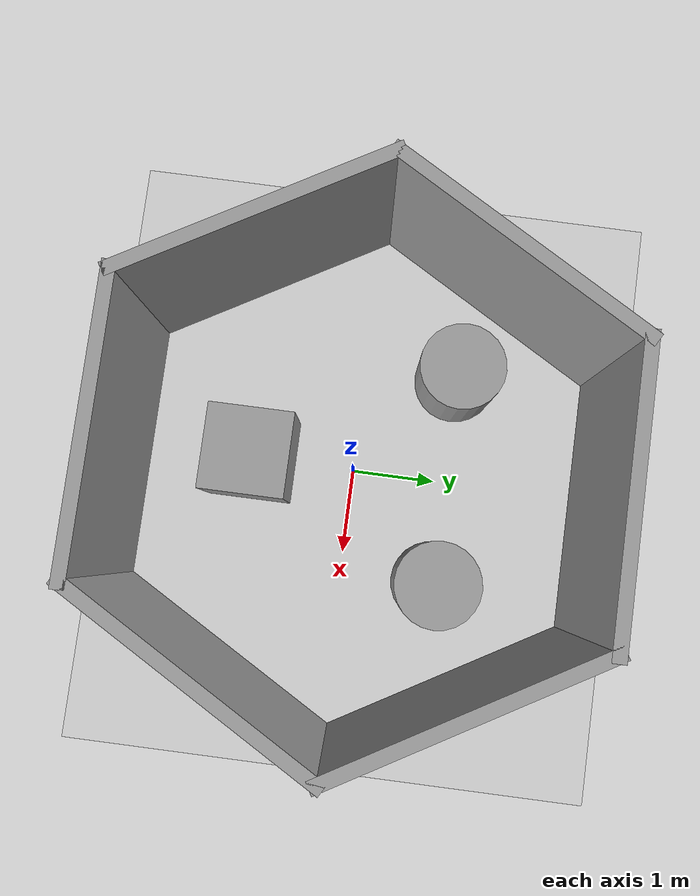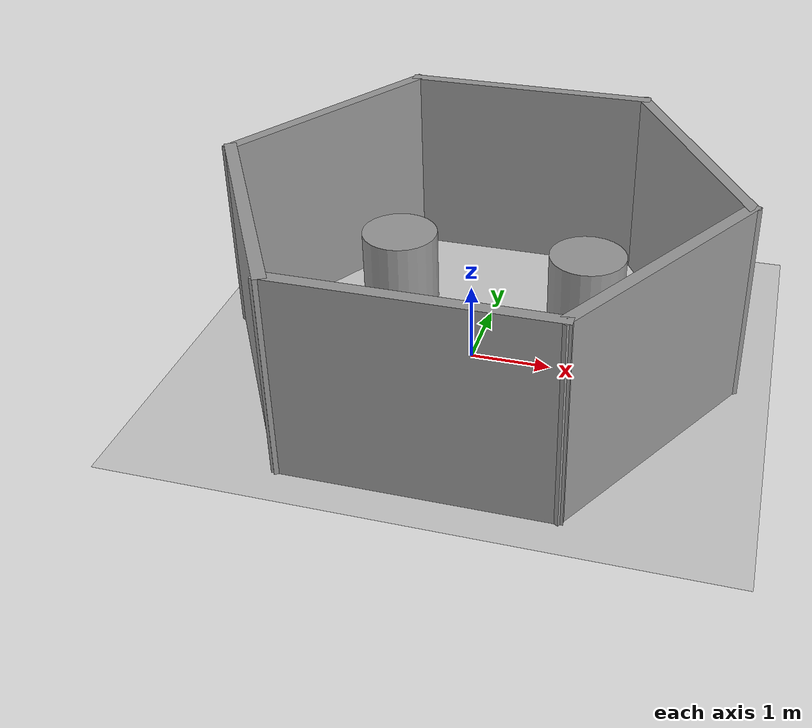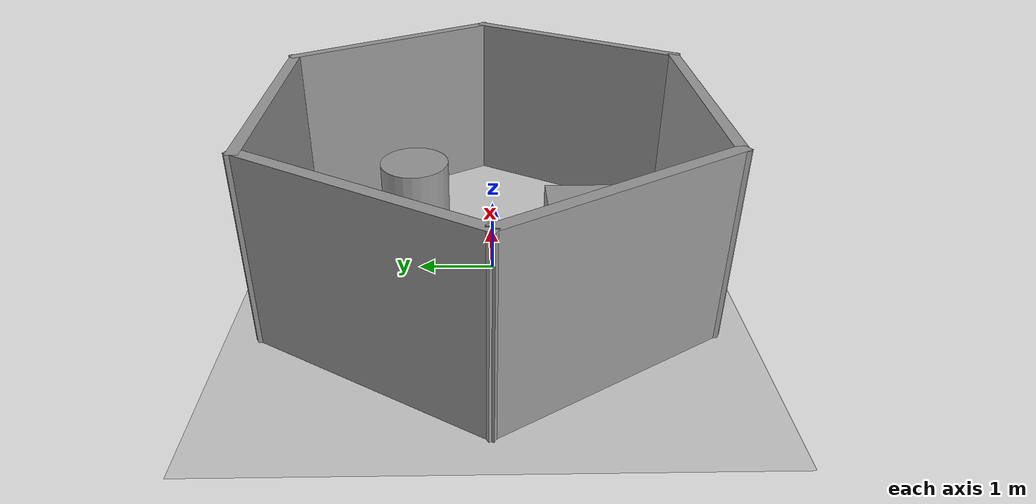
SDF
<sdf version="1.7">
 <world name="default">
  <light name="sun" type="directional">
   <pose>0 0 10 0 -0 0</pose>
   <diffuse>0.8 0.8 0.8 1</diffuse>
   <specular>0.2 0.2 0.2 1</specular>
   <attenuation>
    <range>1000</range>
    <constant>0.9</constant>
    <linear>0.01</linear>
    <quadratic>0.001</quadratic>
   </attenuation>
   <direction>-0.5 0.1 -0.9</direction>
   <spot><inner_angle>0</inner_angle><outer_angle>0</outer_angle><falloff>0</falloff></spot>
  </light>
  <model name="ground_plane">
   <static>1</static>
   <link name="link">
    <collision name="collision">
     <geometry><plane><normal>0 0 1</normal><size>100 100</size></plane></geometry>
     <surface>
      <contact><collide_bitmask>65535</collide_bitmask></contact>
      <friction><ode><mu>100</mu><mu2>50</mu2></ode></friction>
     </surface>
    </collision>
    <visual name="visual">
     <cast_shadows>0</cast_shadows>
     <geometry><plane><normal>0 0 1</normal><size>100 100</size></plane></geometry>
     <material>
      <script><uri>file://media/materials/scripts/gazebo.material</uri><name>Gazebo/Grey</name></script>
     </material>
    </visual>
   </link>
  </model>
  <gravity>0 0 -9.8</gravity>
  <magnetic_field>6e-06 2.3e-05 -4.2e-05</magnetic_field>
  <atmosphere type="adiabatic"/>
  <physics type="ode">
   <max_step_size>0.001</max_step_size>
   <real_time_factor>1</real_time_factor>
   <real_time_update_rate>1000</real_time_update_rate>
  </physics>
  <scene><ambient>0.4 0.4 0.4 1</ambient><background>0.7 0.7 0.7 1</background><shadows>1</shadows></scene>
  <audio><device>default</device></audio>
  <spherical_coordinates>
   <surface_model>EARTH_WGS84</surface_model>
   <latitude_deg>0</latitude_deg>
   <longitude_deg>0</longitude_deg>
   <elevation>0</elevation>
   <heading_deg>0</heading_deg>
  </spherical_coordinates>
  <model name="fish_world_0">
   <pose>0.07 0.08 0 0 -0 0</pose>
   <link name="Wall_10">
    <collision name="Wall_10_Collision">
     <geometry><box><size>3.25 0.15 2.5</size></box></geometry>
     <pose>0 0 1.25 0 -0 0</pose>
    </collision>
    <visual name="Wall_10_Visual">
     <pose>0 0 1.25 0 -0 0</pose>
     <geometry><box><size>3.25 0.15 2.5</size></box></geometry>
     <material>
      <script><uri>file://media/materials/scripts/gazebo.material</uri><name>Gazebo/Grey</name></script>
      <ambient>1 1 1 1</ambient>
     </material>
     <meta><layer>0</layer></meta>
    </visual>
    <pose>0 -2.68468 0 0 -0 0</pose>
   </link>
   <link name="Wall_11">
    <collision name="Wall_11_Collision">
     <geometry><box><size>3.25 0.15 2.5</size></box></geometry>
     <pose>0 0 1.25 0 -0 0</pose>
    </collision>
    <visual name="Wall_11_Visual">
     <pose>0 0 1.25 0 -0 0</pose>
     <geometry><box><size>3.25 0.15 2.5</size></box></geometry>
     <material>
      <script><uri>file://media/materials/scripts/gazebo.material</uri><name>Gazebo/Grey</name></script>
      <ambient>1 1 1 1</ambient>
     </material>
     <meta><layer>0</layer></meta>
    </visual>
    <pose>2.325 -1.34234 0 0 -0 1.0472</pose>
   </link>
   <link name="Wall_12">
    <collision name="Wall_12_Collision">
     <geometry><box><size>3.25 0.15 2.5</size></box></geometry>
     <pose>0 0 1.25 0 -0 0</pose>
    </collision>
    <visual name="Wall_12_Visual">
     <pose>0 0 1.25 0 -0 0</pose>
     <geometry><box><size>3.25 0.15 2.5</size></box></geometry>
     <material>
      <script><uri>file://media/materials/scripts/gazebo.material</uri><name>Gazebo/Grey</name></script>
      <ambient>1 1 1 1</ambient>
     </material>
     <meta><layer>0</layer></meta>
    </visual>
    <pose>2.325 1.34234 0 0 -0 2.0944</pose>
   </link>
   <link name="Wall_13">
    <collision name="Wall_13_Collision">
     <geometry><box><size>3.25 0.15 2.5</size></box></geometry>
     <pose>0 0 1.25 0 -0 0</pose>
    </collision>
    <visual name="Wall_13_Visual">
     <pose>0 0 1.25 0 -0 0</pose>
     <geometry><box><size>3.25 0.15 2.5</size></box></geometry>
     <material>
      <script><uri>file://media/materials/scripts/gazebo.material</uri><name>Gazebo/Grey</name></script>
      <ambient>1 1 1 1</ambient>
     </material>
     <meta><layer>0</layer></meta>
    </visual>
    <pose>0 2.68468 0 0 -0 3.14159</pose>
   </link>
   <link name="Wall_14">
    <collision name="Wall_14_Collision">
     <geometry><box><size>3.25 0.15 2.5</size></box></geometry>
     <pose>0 0 1.25 0 -0 0</pose>
    </collision>
    <visual name="Wall_14_Visual">
     <pose>0 0 1.25 0 -0 0</pose>
     <geometry><box><size>3.25 0.15 2.5</size></box></geometry>
     <material>
      <script><uri>file://media/materials/scripts/gazebo.material</uri><name>Gazebo/Grey</name></script>
      <ambient>1 1 1 1</ambient>
     </material>
     <meta><layer>0</layer></meta>
    </visual>
    <pose>-2.325 1.34234 0 0 -0 -2.0944</pose>
   </link>
   <link name="Wall_9">
    <collision name="Wall_9_Collision">
     <geometry><box><size>3.25 0.15 2.5</size></box></geometry>
     <pose>0 0 1.25 0 -0 0</pose>
    </collision>
    <visual name="Wall_9_Visual">
     <pose>0 0 1.25 0 -0 0</pose>
     <geometry><box><size>3.25 0.15 2.5</size></box></geometry>
     <material>
      <script><uri>file://media/materials/scripts/gazebo.material</uri><name>Gazebo/Grey</name></script>
      <ambient>1 1 1 1</ambient>
     </material>
     <meta><layer>0</layer></meta>
    </visual>
    <pose>-2.325 -1.34234 0 0 -0 -1.0472</pose>
   </link>
   <static>1</static>
  </model>
  <model name="unit_box">
   <pose>-0.002868 -1.22832 0.499995 0 1e-05 0</pose>
   <link name="link">
    <inertial>
     <mass>1</mass>
     <inertia>
      <ixx>0.166667</ixx>
      <ixy>0</ixy>
      <ixz>0</ixz>
      <iyy>0.166667</iyy>
      <iyz>0</iyz>
      <izz>0.166667</izz>
     </inertia>
    </inertial>
    <collision name="collision"><geometry><box><size>1 1 1</size></box></geometry></collision>
    <visual name="visual">
     <geometry><box><size>1 1 1</size></box></geometry>
     <material>
      <script><name>Gazebo/Grey</name><uri>file://media/materials/scripts/gazebo.material</uri></script>
     </material>
    </visual>
   </link>
  </model>
  <model name="unit_cylinder">
   <pose>-1.27706 1.1119 0.499993 -3e-06 -4e-06 -0</pose>
   <link name="link">
    <inertial>
     <mass>1</mass>
     <inertia><ixx>0.145833</ixx><ixy>0</ixy><ixz>0</ixz><iyy>0.145833</iyy><iyz>0</iyz><izz>0.125</izz></inertia>
    </inertial>
    <collision name="collision">
     <geometry><cylinder><radius>0.5</radius><length>1</length></cylinder></geometry>
    </collision>
    <visual name="visual">
     <geometry><cylinder><radius>0.5</radius><length>1</length></cylinder></geometry>
     <material>
      <script><name>Gazebo/Grey</name><uri>file://media/materials/scripts/gazebo.material</uri></script>
     </material>
    </visual>
   </link>
  </model>
  <model name="unit_cylinder_0">
   <pose>1.23285 1.1269 0.499997 3e-06 4e-06 -0</pose>
   <link name="link">
    <inertial>
     <mass>1</mass>
     <inertia><ixx>0.145833</ixx><ixy>0</ixy><ixz>0</ixz><iyy>0.145833</iyy><iyz>0</iyz><izz>0.125</izz></inertia>
    </inertial>
    <collision name="collision">
     <geometry><cylinder><radius>0.5</radius><length>1</length></cylinder></geometry>
    </collision>
    <visual name="visual">
     <geometry><cylinder><radius>0.5</radius><length>1</length></cylinder></geometry>
     <material>
      <script><name>Gazebo/Grey</name><uri>file://media/materials/scripts/gazebo.material</uri></script>
     </material>
    </visual>
   </link>
  </model>
 </world>
</sdf>
